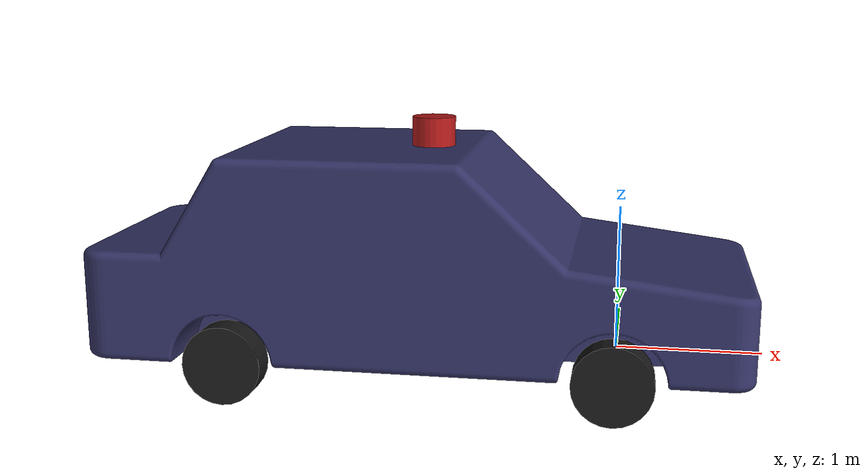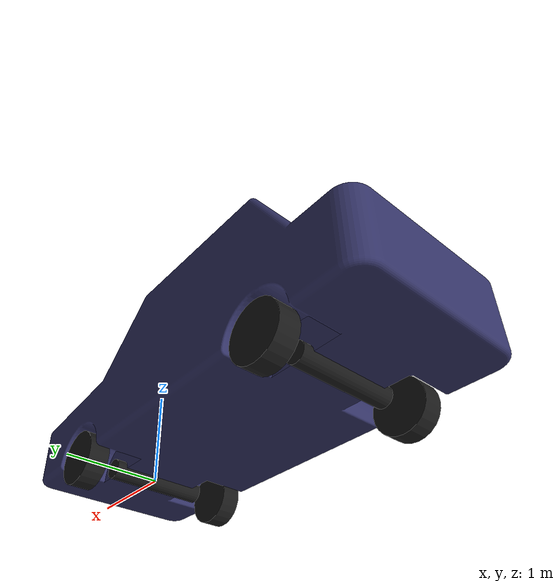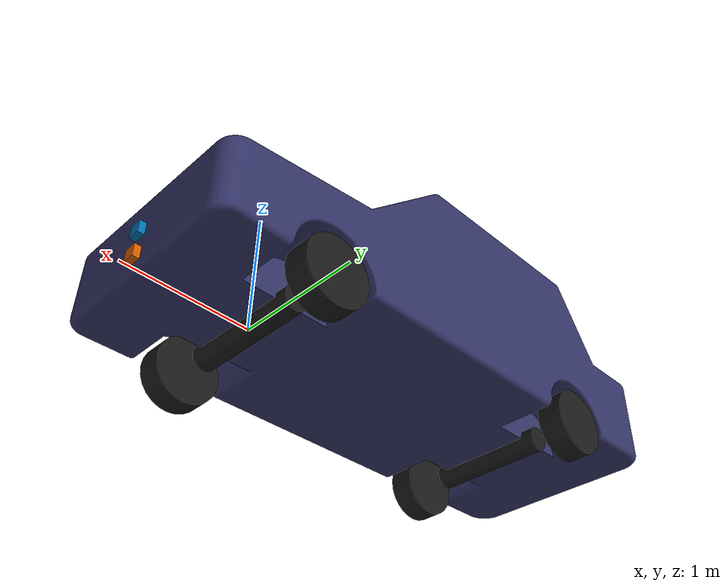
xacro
<?xml version="1.0" encoding="UTF-8"?>
<robot xmlns:xacro="http://www.ros.org/wiki/xacro" name="robot">
  <xacro:include filename="$(find isa_afa_3)/src/description/vehicle_ackermann.gazebo" />

  <!-- Properties -->
  <xacro:property name="chassis_mass" value="1000" />
  <xacro:property name="chassis_length" value="4.5" />
  <xacro:property name="chassis_width" value="1.8" />
  <xacro:property name="chassis_height" value="1.4" />
  <xacro:property name="axle_mass" value="50" />
  <xacro:property name="axle_radius" value="0.1" />
  <xacro:property name="axle_width" value="1.0" />
  <xacro:property name="wheel_mass" value="20" />
  <xacro:property name="wheel_radius" value="0.27" />
  <xacro:property name="wheel_width" value="0.2" />
  <xacro:property name="wheel_base" value="2.6" />
  <xacro:property name="lidar_mass" value="0.5" />
  <xacro:property name="lidar_radius" value="0.15" />
  <xacro:property name="lidar_length" value="0.2" />
  <xacro:property name="camera_mass" value="0.05" />
  <xacro:property name="camera_width" value="0.1" />
  <xacro:property name="camera_depth" value="0.03" />
  <xacro:property name="camera_height" value="0.07" />
  <xacro:property name="sonar_mass" value="0.05" />
  <xacro:property name="sonar_width" value="0.1" />
  <xacro:property name="sonar_depth" value="0.03" />
  <xacro:property name="sonar_height" value="0.1" />

  <!-- Commonly used inertial: Box  -->
  <xacro:macro name="box_inertia" params="m w h d x y z">
    <inertial>
      <origin xyz="${x} ${y} ${z}" rpy="${pi/2} 0 ${pi/2}" />
      <mass value="${m}" />
      <inertia ixx="${(m/12) * (h*h + d*d)}" ixy="0.0" ixz="0.0" iyy="${(m/12) * (w*w + d*d)}" iyz="0.0" izz="${(m/12) * (w*w + h*h)}" />
    </inertial>
  </xacro:macro>

  <!-- Commonly used inertial: Cylinder  -->
  <xacro:macro name="cylinder_inertia" params="m r h">
    <inertial>
      <origin xyz="0 0 0" rpy="${pi/2} 0 0" />
      <mass value="${m}" />
      <inertia ixx="${(m/12) * (3*r*r + h*h)}" ixy="0.0" ixz="0.0" iyy="${(m/12) * (3*r*r + h*h)}" iyz="0.0" izz="${(m/2) * (r*r)}" />
    </inertial>
  </xacro:macro>

  <!-- Link - chassis -->
  <link name="base_link">
    <xacro:box_inertia m="${chassis_mass}" w="${chassis_width}" d="${chassis_length}" h="${chassis_height}" x="-${chassis_length/2-0.9}" y="0" z="${chassis_height/2}" />
    <collision>
      <origin xyz="0 0 0" rpy="0 0 0" />
      <geometry>
        <mesh filename="package://isa_afa_3/meshes/chassis.stl" />
      </geometry>
    </collision>
    <visual>
      <origin xyz="0 0 0" rpy="0 0 0" />
      <geometry>
        <mesh filename="package://isa_afa_3/meshes/chassis.stl" />
      </geometry>
      <material name="DarkBlue">
        <color rgba="0.2 0.2 0.4 1" />
      </material>
    </visual>
  </link>

  <!-- Link - robot footprint -->
  <link name="base_footprint">
    <inertial>
      <mass value="0.01" />
      <inertia ixx="0.001" ixy="0.0" ixz="0.0" iyy="0.001" iyz="0.0" izz="0.001" />
    </inertial>
  </link>

  <!-- Link - rear left wheel -->
  <link name="rear_left_wheel_link">
    <xacro:cylinder_inertia m="${wheel_mass}" r="${wheel_radius}" h="${wheel_width}" />
    <collision>
      <origin rpy="${pi/2} 0 0" xyz="0 0 0" />
      <geometry>
        <cylinder length="${wheel_width}" radius="${wheel_radius}" />
      </geometry>
    </collision>
    <visual>
      <origin rpy="${pi/2} 0 0" xyz="0 0 0" />
      <geometry>
        <cylinder length="${wheel_width}" radius="${wheel_radius}" />
      </geometry>
      <material name="Black">
        <color rgba="0.1 0.1 0.1 1" />
      </material>
    </visual>
  </link>

  <!-- Link - rear right wheel -->
  <link name="rear_right_wheel_link">
    <xacro:cylinder_inertia m="${wheel_mass}" r="${wheel_radius}" h="${wheel_width}" />
    <collision>
      <origin rpy="${pi/2} 0 0" xyz="0 0 0" />
      <geometry>
        <cylinder length="${wheel_width}" radius="${wheel_radius}" />
      </geometry>
    </collision>
    <visual>
      <origin rpy="${pi/2} 0 0" xyz="0 0 0" />
      <geometry>
        <cylinder length="${wheel_width}" radius="${wheel_radius}" />
      </geometry>
      <material name="Black">
        <color rgba="0.1 0.1 0.1 1" />
      </material>
    </visual>
  </link>

  <!-- Link - front left wheel -->
  <link name="front_left_wheel_link">
    <xacro:cylinder_inertia m="${wheel_mass}" r="${wheel_radius}" h="${wheel_width}" />
    <collision>
      <origin rpy="${pi/2} 0 0" xyz="0 0 0" />
      <geometry>
        <cylinder length="${wheel_width}" radius="${wheel_radius}" />
      </geometry>
    </collision>
    <visual>
      <origin rpy="${pi/2} 0 0" xyz="0 0 0" />
      <geometry>
        <cylinder length="${wheel_width}" radius="${wheel_radius}" />
      </geometry>
      <material name="Black">
        <color rgba="0.1 0.1 0.1 1" />
      </material>
    </visual>
  </link>

  <!-- Link - front right wheel -->
  <link name="front_right_wheel_link">
    <xacro:cylinder_inertia m="${wheel_mass}" r="${wheel_radius}" h="${wheel_width}" />
    <collision>
      <origin rpy="${pi/2} 0 0" xyz="0 0 0" />
      <geometry>
        <cylinder length="${wheel_width}" radius="${wheel_radius}" />
      </geometry>
    </collision>
    <visual>
      <origin rpy="${pi/2} 0 0" xyz="0 0 0" />
      <geometry>
        <cylinder length="${wheel_width}" radius="${wheel_radius}" />
      </geometry>
      <material name="Black">
        <color rgba="0.1 0.1 0.1 1" />
      </material>
    </visual>
  </link>

  <!-- Link - front axle -->
  <link name="front_axle_link">
    <xacro:cylinder_inertia m="${axle_mass}" r="${axle_radius}" h="${axle_width}" />
    <collision>
      <origin rpy="${pi/2} 0 0" xyz="0 0 0" />
      <geometry>
        <cylinder length="${axle_width}" radius="${axle_radius}" />
      </geometry>
    </collision>
    <visual>
      <origin rpy="${pi/2} 0 0" xyz="0 0 0" />
      <geometry>
        <cylinder length="${axle_width}" radius="${axle_radius}" />
      </geometry>
      <material name="Black">
        <color rgba="0.1 0.1 0.1 1" />
      </material>
    </visual>
  </link>

  <!-- Link - rear axle -->
  <link name="rear_axle_link">
    <xacro:cylinder_inertia m="${axle_mass}" r="${axle_radius}" h="${axle_width}" />
    <collision>
      <origin rpy="${pi/2} 0 0" xyz="0 0 0" />
      <geometry>
        <cylinder length="${axle_width}" radius="${axle_radius}" />
      </geometry>
    </collision>
    <visual>
      <origin rpy="${pi/2} 0 0" xyz="0 0 0" />
      <geometry>
        <cylinder length="${axle_width}" radius="${axle_radius}" />
      </geometry>
      <material name="Black">
        <color rgba="0.1 0.1 0.1 1" />
      </material>
    </visual>
  </link>

  <!-- Link - left kingpin -->
  <link name="left_kingpin_link">
    <inertial>
      <mass value="0.01" />
      <inertia ixx="0.001" ixy="0" ixz="0" iyy="0.001" iyz="0" izz="0.001" />
    </inertial>
  </link>

  <!-- Link - right kingpin -->
  <link name="right_kingpin_link">
    <inertial>
      <mass value="0.01" />
      <inertia ixx="0.001" ixy="0" ixz="0" iyy="0.001" iyz="0" izz="0.001" />
    </inertial>
  </link>

  <!-- Link - lidar -->
  <link name="lidar_link">
    <inertial>
      <origin xyz="0 0 0" rpy="0 0 0" />
      <mass value="${lidar_mass}" />
      <inertia ixx="0.00025267" ixy="0" ixz="0" iyy="0.00025267" iyz="0" izz="0.0005" />
    </inertial>
    <visual>
      <origin xyz="0 0 0" rpy="0 0 0" />
      <geometry>
        <cylinder radius="${lidar_radius}" length="${lidar_length}" />
      </geometry>
      <material name="Red">
        <color rgba="0.7 0.1 0.1 1" />
      </material>
    </visual>
    <collision>
      <origin xyz="0 0 0" rpy="0 0 0" />
      <geometry>
        <cylinder radius="${lidar_radius}" length="${lidar_length}" />
      </geometry>
    </collision>
  </link>

  <!-- Link - imu -->
  <link name="imu_link">
    <xacro:box_inertia m="0.1" w="0.1" d="0.1" h="0.1" x="0" y="0" z="0" />
    <visual>
      <origin xyz="0 0 0" rpy="0 0 0" />
      <geometry>
        <box size="0.1 0.1 0.1" />
      </geometry>
    </visual>
    <collision>
      <origin xyz="0 0 0" rpy="0 0 0" />
      <geometry>
        <box size="0.1 0.1 0.1" />
      </geometry>
    </collision>
  </link>

  <!-- Link - camera -->
  <link name="camera_link">
    <xacro:box_inertia m="${camera_mass}" w="${camera_width}" d="${camera_depth}" h="${camera_height}" x="0" y="0" z="0" />
    <visual>
      <origin xyz="0 0 0" rpy="0 0 0" />
      <geometry>
        <box size="0.1 0.1 0.1" />
      </geometry>
    </visual>
    <collision>
      <origin xyz="0 0 0" rpy="0 0 0" />
      <geometry>
        <box size="0.1 0.1 0.1" />
      </geometry>
    </collision>
  </link>

  <!-- Link - sonar -->
  <link name="sonar_link">
    <xacro:box_inertia m="${sonar_mass}" w="${sonar_width}" d="${sonar_depth}" h="${sonar_height}" x="0" y="0" z="0" />
    <visual>
      <origin xyz="0 0 0" rpy="0 0 0" />
      <geometry>
        <box size="0.1 0.1 0.1" />
      </geometry>
    </visual>
    <collision>
      <origin xyz="0 0 0" rpy="0 0 0" />
      <geometry>
        <box size="0.1 0.1 0.1" />
      </geometry>
    </collision>
  </link>

  <!-- Joint - chassis / footprint -->
  <joint name="base_joint" type="fixed">
    <origin rpy="0 0 0" xyz="0 0 -${wheel_radius}" />
    <child link="base_footprint" />
    <parent link="base_link" />
  </joint>

  <!-- Joint - chassis / front axle -->
  <joint name="chassis_front_axle_joint" type="fixed">
    <origin rpy="0 0 0" xyz="0 0 0" />
    <child link="front_axle_link" />
    <parent link="base_link" />
  </joint>

  <!-- Joint - chassis / rear axle -->
  <joint name="chassis_rear_axle_joint" type="fixed">
    <origin rpy="0 0 0" xyz="-${wheel_base} 0 0" />
    <child link="rear_axle_link" />
    <parent link="base_link" />
  </joint>

  <!-- Joint - front axle / left kingpin -->
  <joint name="steering_left_kingpin_joint" type="revolute">
    <child link="left_kingpin_link" />
    <parent link="front_axle_link" />
    <origin xyz="0 ${chassis_width/2-wheel_width} 0" rpy="0 0 0" />
    <axis xyz="0 0 1" />
    <limit lower="-0.7" upper="0.7" effort="100" velocity="1" />
  </joint>

  <!-- Joint - front axle / right kingpin -->
  <joint name="steering_right_kingpin_joint" type="revolute">
    <child link="right_kingpin_link" />
    <parent link="front_axle_link" />
    <origin xyz="0 -${chassis_width/2-wheel_width} 0" rpy="0 0 0" />
    <axis xyz="0 0 1" />
    <limit lower="-0.7" upper="0.7" effort="100" velocity="1" />
  </joint>

  <!-- Joint - left kingpin / front left wheel -->
  <joint name="left_kingpin_wheel_joint" type="continuous">
    <child link="front_left_wheel_link" />
    <parent link="left_kingpin_link" />
    <origin xyz="0 ${wheel_width/2} 0" rpy="0 0 0" />
    <axis xyz="0 1 0" />
  </joint>

  <!-- Joint - right kingpin / front right wheel -->
  <joint name="right_kingpin_wheel_joint" type="continuous">
    <child link="front_right_wheel_link" />
    <parent link="right_kingpin_link" />
    <origin xyz="0 -${wheel_width/2} 0" rpy="0 0 0" />
    <axis xyz="0 1 0" />
  </joint>

  <!-- Joint - rear axle / rear left wheel -->
  <joint name="rear_axle_left_wheel_joint" type="continuous">
    <child link="rear_left_wheel_link" />
    <parent link="rear_axle_link" />
    <origin xyz="0 ${chassis_width/2-wheel_width/2} 0" rpy="0 0 0" />
    <axis xyz="0 1 0" />
  </joint>

  <!-- Joint - rear axle / rear right wheel -->
  <joint name="rear_axle_right_wheel_joint" type="continuous">
    <child link="rear_right_wheel_link" />
    <parent link="rear_axle_link" />
    <origin xyz="0 -${chassis_width/2-wheel_width/2} 0" rpy="0 0 0" />
    <axis xyz="0 1 0" />
  </joint>

  <!-- Joint - chassis / lidar -->
  <joint name="lidar_joint" type="fixed">
    <origin rpy="0 0 0" xyz="-${wheel_base/2} 0 ${lidar_length/2+chassis_height}" />
    <child link="lidar_link" />
    <parent link="base_link" />
  </joint>

  <!-- Joint - chassis / imu -->
  <joint name='imu_joint' type='fixed'>
    <child link="imu_link" />
    <parent link="base_link" />
  </joint>

  <!-- Joint - chassis / camera -->
  <joint name='camera_joint' type='fixed'>
    <origin rpy="0 0 0" xyz="0.9 0 0.3" />
    <child link="camera_link" />
    <parent link="base_link" />
  </joint>

  <!-- Joint - chassis / sonar -->
  <joint name='sonar_joint' type='fixed'>
    <origin rpy="0 0 0" xyz="0.9 0 0.1" />
    <child link="sonar_link" />
    <parent link="base_link" />
  </joint>
</robot>
